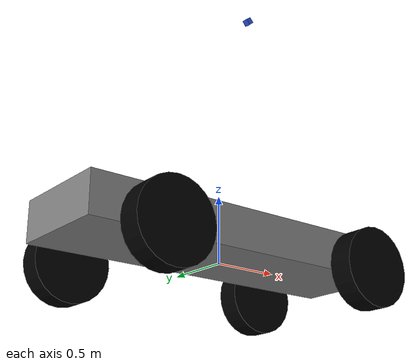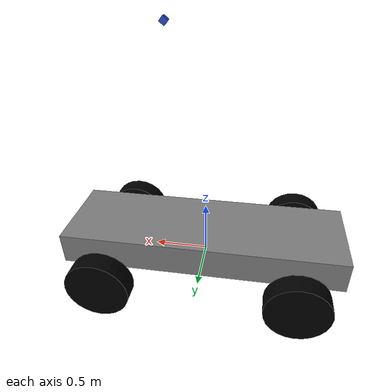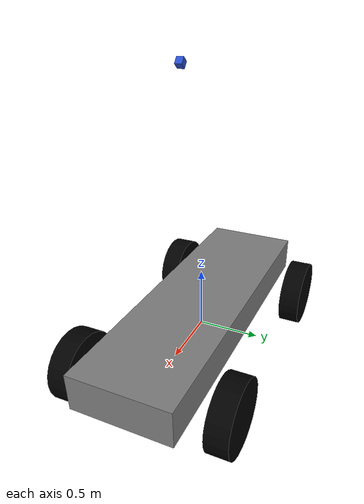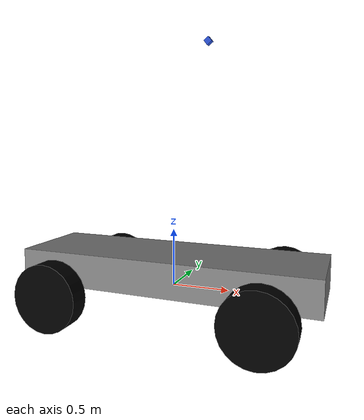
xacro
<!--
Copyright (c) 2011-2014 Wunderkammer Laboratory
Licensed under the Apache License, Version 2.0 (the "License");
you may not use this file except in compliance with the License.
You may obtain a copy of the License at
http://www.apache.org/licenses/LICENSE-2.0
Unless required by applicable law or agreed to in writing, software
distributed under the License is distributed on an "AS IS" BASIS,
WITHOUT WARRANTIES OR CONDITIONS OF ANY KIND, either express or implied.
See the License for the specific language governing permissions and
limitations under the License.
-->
<?xml version="1.0"?>

<robot name="em_3905" xmlns:xacro="http://www.ros.org/wiki/xacro">

	<xacro:macro name="cylinder_inertia" params="m r h">
		<inertia  ixx="${m*(3*r*r+h*h)/12}" ixy = "0" ixz = "0"
		          iyy="${m*(3*r*r+h*h)/12}" iyz = "0"
		          izz="${m*r*r/2}" />
	</xacro:macro>

	<xacro:macro name="box_inertia" params="m x y z">
		<inertia  ixx="${m*(y*y+z*z)/12}" ixy = "0" ixz = "0"
		          iyy="${m*(x*x+z*z)/12}" iyz = "0"
		          izz="${m*(x*x+z*z)/12}" />
	</xacro:macro>

	<xacro:macro name="sphere_inertia" params="m r">
		<inertia  ixx="${2*m*r*r/5}" ixy = "0" ixz = "0"
		          iyy="${2*m*r*r/5}" iyz = "0"
		          izz="${2*m*r*r/5}" />
	</xacro:macro>

  <!-- Degree-to-radian conversions -->
  <xacro:property name="degrees_45" value="0.785398163"/>
  <xacro:property name="degrees_90" value="1.57079633"/>

  <!-- chassis_length is measured along the x axis, chassis_width
       along the y axis, and chassis_height along the z axis. -->
  <xacro:property name="chassis_length" value="2.61"/>
  <xacro:property name="chassis_width" value="0.8"/>
  <xacro:property name="chassis_height" value="0.3"/>
  <xacro:property name="chassis_mass" value="2.788"/>

  <xacro:property name="hub_dia" value="0.381"/>
  <xacro:property name="tire_dia" value="0.5842"/>
  <xacro:property name="tire_width" value="0.1778"/>
  <xacro:property name="hex_hub_depth" value="0.0889"/>
  <xacro:property name="wheel_mass" value="0.9"/>

  <xacro:property name="wheelbase" value="1.7526"/>
  <xacro:property name="hex_hub_dist" value="1.2446"/>
  <xacro:property name="axle_length" value="0.0"/>
  <xacro:property name="wheel_travel" value="0.084"/>
  <xacro:property name="shock_z_offset" value="0.0655"/>

  <xacro:property name="shock_eff_limit" value="12.5106"/>
  <xacro:property name="shock_vel_limit" value="1000"/>

  <xacro:property name="axle_eff_limit" value="5.12766"/>
  <xacro:property name="axle_vel_limit" value="244.8696"/>

  <!-- These constants are used to simulate a Traxxas 2056 servo operated at
       6 V. servo_stall_torque is measured in N m. servo_no_load_speed is
       measured in rad/s. -->
  <xacro:property name="servo_stall_torque" value="150"/><!-- Effort 0.5649-->
  <xacro:property name="servo_no_load_speed" value="1"/><!--velocity 4.553-->

	<xacro:property name="cameraSize" value=".05"/>

  <material name="battery_mat">
    <color rgba="0 0 1 1"/>
  </material>
  <material name="chassis_mat">
    <color rgba="0.5 0.5 0.5 1"/>
  </material>
  <material name="tire_mat">
    <color rgba="0 0 0 1"/>
  </material>

  <!-- Null inertial element. This is needed to make the model work with
       Gazebo. -->
  <xacro:macro name="null_inertial">
    <inertial>
      <mass value="0.001"/>
      <inertia ixx="0.001" ixy="0" ixz="0" iyy="0.001" iyz="0" izz="0.001"/>
    </inertial>
  </xacro:macro>

  <!-- Inertia of a solid cuboid. Width is measured along the x axis, depth
       along the y axis, and height along the z axis. -->
  <xacro:macro name="solid_cuboid_inertial"
               params="width depth height mass *origin">
    <inertial>
      <xacro:insert_block name="origin"/>
      <mass value="${mass}"/>
      <inertia ixx="${mass * (depth * depth + height * height) / 12}"
               ixy="0" ixz="0"
               iyy="${mass * (width * width + height * height) / 12}"
               iyz="0"
               izz="${mass * (width * width + depth * depth) / 12}"/>
    </inertial>
  </xacro:macro>

  <xacro:macro name="thick_walled_tube_inertial"
               params="inner_rad outer_rad height mass">
    <inertial>
      <mass value="${mass}"/>
      <inertia ixx="${(1 / 12) * mass * (3 * (inner_rad * inner_rad +
                    outer_rad * outer_rad) + height * height)}"
               ixy="0" ixz="0"
               iyy="${(1 / 12) * mass * (3 * (inner_rad * inner_rad +
                    outer_rad * outer_rad) + height * height)}"
               iyz="0"
               izz="${mass * (inner_rad * inner_rad +
                    outer_rad * outer_rad) / 2}"/>
    </inertial>
  </xacro:macro>

  <!-- Shock absorber -->
  <xacro:macro name="shock"
               params="lr_prefix fr_prefix lr_reflect fr_reflect child">
    <joint name="${lr_prefix}_${fr_prefix}_shock" type="prismatic">
      <parent link="chassis"/>
      <child link="${child}"/>

      <origin xyz="${fr_reflect * wheelbase / 2}
                   ${lr_reflect * ((hex_hub_dist / 2) - axle_length)}
                   ${(wheel_travel / 2) - shock_z_offset}"/>
      <axis xyz="0 0 -1"/>
      <limit lower="${-wheel_travel / 2}" upper="${wheel_travel / 2}"
             effort="${shock_eff_limit}" velocity="${shock_vel_limit}"/>
    </joint>
    <transmission name="${lr_prefix}_${fr_prefix}_shock_trans">
      <type>transmission_interface/SimpleTransmission</type>
      <joint name="${lr_prefix}_${fr_prefix}_shock">
        <hardwareInterface>EffortJointInterface</hardwareInterface>
      </joint>
      <actuator name="${lr_prefix}_${fr_prefix}_shock_act">
        <!-- This hardwareInterface element exists for compatibility
             with ROS Hydro. -->
        <hardwareInterface>EffortJointInterface</hardwareInterface>
        <mechanicalReduction>1</mechanicalReduction>
      </actuator>
    </transmission>
  </xacro:macro>

  <!-- The "wheel" macro defines an axle carrier, axle, and wheel. -->
  <xacro:macro name="wheel" params="lr_prefix fr_prefix lr_reflect">
    <link name="${lr_prefix}_${fr_prefix}_axle_carrier">
      <xacro:null_inertial/>
    </link>

    <!-- The left and right axles have the same axis so that identical
         rotation values cause the wheels to rotate in the same direction. -->
    <joint name="${lr_prefix}_${fr_prefix}_axle" type="continuous">
      <parent link="${lr_prefix}_${fr_prefix}_axle_carrier"/>
      <child link="${lr_prefix}_${fr_prefix}_wheel"/>
      <origin rpy="${degrees_90} 0 0"/>
      <axis xyz="0 0 -1"/>
      <limit effort="${axle_eff_limit}" velocity="${axle_vel_limit}"/>
    </joint>
    <transmission name="${lr_prefix}_${fr_prefix}_axle_trans">
      <type>transmission_interface/SimpleTransmission</type>
      <joint name="${lr_prefix}_${fr_prefix}_axle">
        <hardwareInterface>EffortJointInterface</hardwareInterface>
      </joint>
      <actuator name="${lr_prefix}_${fr_prefix}_axle_act">
        <!-- This hardwareInterface element exists for compatibility
             with ROS Hydro. -->
        <hardwareInterface>EffortJointInterface</hardwareInterface>
        <mechanicalReduction>1</mechanicalReduction>
      </actuator>
    </transmission>

    <link name="${lr_prefix}_${fr_prefix}_wheel">
      <visual>
        <origin xyz="0
                     ${lr_reflect * (axle_length - (tire_width /
                     2 - hex_hub_depth))}
                     0"/>
        <geometry>
          <cylinder radius="${tire_dia / 2}" length="${tire_width}"/>
        </geometry>
        <material name="tire_mat"/>
      </visual>

      <collision>
        <origin xyz="0
                     ${lr_reflect * (axle_length - (tire_width /
                     2 - hex_hub_depth))}
                     0"/>
        <geometry>
          <cylinder radius="${tire_dia / 2}" length="${tire_width}"/>
        </geometry>
      </collision>

      <xacro:thick_walled_tube_inertial
          inner_rad="${hub_dia / 2}" outer_rad="${tire_dia / 2}"
          height="${tire_width}" mass="${wheel_mass}"/>
    </link>

    <gazebo reference="${lr_prefix}_${fr_prefix}_wheel">
      <material>Gazebo/Black</material>
    </gazebo>
  </xacro:macro>

  <!-- Front wheel -->
  <xacro:macro name="front_wheel"
               params="lr_prefix fr_prefix lr_reflect fr_reflect">
    <xacro:shock lr_prefix="${lr_prefix}" fr_prefix="${fr_prefix}"
                 lr_reflect="${lr_reflect}" fr_reflect="${fr_reflect}"
                 child="${lr_prefix}_steering_link"/>

    <link name="${lr_prefix}_steering_link">
      <xacro:null_inertial/>
    </link>

    <joint name="${lr_prefix}_steering_joint" type="revolute">
      <parent link="${lr_prefix}_steering_link"/>
      <child link="${lr_prefix}_${fr_prefix}_axle_carrier"/>
      <axis xyz="0 0 1"/>
      <limit lower="${-degrees_45}" upper="${degrees_45}"
             effort="${servo_stall_torque}" velocity="${servo_no_load_speed}"/>
    </joint>
    <transmission name="${lr_prefix}_steering_trans">
      <type>transmission_interface/SimpleTransmission</type>
      <joint name="${lr_prefix}_steering_joint">
        <hardwareInterface>EffortJointInterface</hardwareInterface>
      </joint>
      <actuator name="${lr_prefix}_steering_act">
        <!-- This hardwareInterface element exists for compatibility
             with ROS Hydro. -->
        <hardwareInterface>EffortJointInterface</hardwareInterface>
        <mechanicalReduction>1</mechanicalReduction>
      </actuator>
    </transmission>

    <xacro:wheel lr_prefix="${lr_prefix}" fr_prefix="${fr_prefix}"
                 lr_reflect="${lr_reflect}"/>
  </xacro:macro>

  <!-- Rear wheel -->
  <xacro:macro name="rear_wheel"
               params="lr_prefix fr_prefix lr_reflect fr_reflect">
    <xacro:shock lr_prefix="${lr_prefix}" fr_prefix="${fr_prefix}"
                 lr_reflect="${lr_reflect}" fr_reflect="${fr_reflect}"
                 child="${lr_prefix}_${fr_prefix}_axle_carrier"/>
    <xacro:wheel lr_prefix="${lr_prefix}" fr_prefix="${fr_prefix}"
                 lr_reflect="${lr_reflect}"/>
  </xacro:macro>

  <!-- base_link must have geometry so that its axes can be displayed in
       rviz. -->
  <link name="base_link">
    <visual>
      <geometry>
        <box size="0.01 0.01 0.01"/>
      </geometry>
      <material name="chassis_mat"/>
    </visual>
  </link>
  <gazebo reference="base_link">
    <material>Gazebo/Grey</material>
  </gazebo>

  <!-- Chassis -->
  <link name="chassis">
    <visual>
      <origin xyz="0 0 ${chassis_height / 2}"/>
      <geometry>
        <box size="${chassis_length} ${chassis_width} ${chassis_height}"/>
      </geometry>
      <material name="chassis_mat"/>
    </visual>

    <collision>
      <origin xyz="0 0 ${chassis_height / 2}"/>
      <geometry>
        <box size="${chassis_length} ${chassis_width} ${chassis_height}"/>
      </geometry>
    </collision>

    <xacro:solid_cuboid_inertial
        width="${chassis_length}" depth="${chassis_width}"
        height="${chassis_height}" mass="${chassis_mass}">
      <origin xyz="0 0 ${-chassis_height / 2}"/>
    </xacro:solid_cuboid_inertial>
  </link>
  <gazebo reference="chassis">
    <material>Gazebo/Grey</material>
  </gazebo>

  <joint name="base_link_to_chassis" type="fixed">
    <parent link="base_link"/>
    <child link="chassis"/>
  </joint>

  <!-- Wheels -->
  <xacro:front_wheel lr_prefix="left" fr_prefix="front"
                     lr_reflect="1" fr_reflect="1"/>
  <xacro:front_wheel lr_prefix="right" fr_prefix="front"
                     lr_reflect="-1" fr_reflect="1"/>
  <xacro:rear_wheel lr_prefix="left" fr_prefix="rear"
                    lr_reflect="1" fr_reflect="-1"/>
  <xacro:rear_wheel lr_prefix="right" fr_prefix="rear"
                    lr_reflect="-1" fr_reflect="-1"/>

  <gazebo>
    <plugin name="gazebo_ros_control" filename="libgazebo_ros_control.so"/>
			<legacyModeNS>true</legacyModeNS>
  </gazebo>

	<!-- Camera -->
	<!-- You can adjust the camera angle with the p in rpy, measured in radians. -->
	<!-- You can also increate the height of the camera by adding a number, in meters, -->
	<!-- to the z in xyz. For example, to simulate a camera mounted on a 1/2 meter post, -->
	<!-- we can replace the z value with ${wheelRadius+chassisHeight+0.5}   							-->
  <joint name="camera_joint" type="fixed">
    <origin xyz="${(chassis_length/2)-1} 0 ${(tire_dia/2)+chassis_height+1.5}" rpy="0 .9 0"/>
    <parent link="chassis"/>
    <child link="camera"/>
  </joint>

  <link name="camera">
    <collision>
      <origin xyz="0 0 0" rpy="0 0 0"/>
      <geometry>
	<box size="${cameraSize} ${cameraSize} ${cameraSize}"/>
      </geometry>
    </collision>

    <visual>
      <origin xyz="0 0 0" rpy="0 0 0"/>
      <geometry>
	<box size="${cameraSize} ${cameraSize} ${cameraSize}"/>
      </geometry>
      <material name="blue"/>
    </visual>

    <inertial>
      <mass value="0.05" />
      <origin xyz="0 0 0" rpy="0 0 0"/>
      <box_inertia m="0.05" x="${cameraSize}" y="${cameraSize}" z="${cameraSize}" />
    </inertial>
  </link>

 <gazebo reference="camera">
  <material>Gazebo/Blue</material>
  <sensor type="camera" name="camera1">
      <update_rate>30.0</update_rate>
      <camera name="head">
        <horizontal_fov>1.3962634</horizontal_fov>
        <image>
          <width>800</width>
          <height>800</height>
          <format>R8G8B8</format>
        </image>
        <clip>
          <near>0.02</near>
          <far>300</far>
        </clip>
      </camera>
      <plugin name="camera_controller" filename="libgazebo_ros_camera.so">
        <alwaysOn>true</alwaysOn>
        <updateRate>0.0</updateRate>
        <cameraName>camera1</cameraName>
        <imageTopicName>image_raw</imageTopicName>
        <cameraInfoTopicName>camera_info</cameraInfoTopicName>
        <frameName>camera_link</frameName>
        <hackBaseline>0.07</hackBaseline>
        <distortionK1>0.0</distortionK1>
        <distortionK2>0.0</distortionK2>
        <distortionK3>0.0</distortionK3>
        <distortionT1>0.0</distortionT1>
        <distortionT2>0.0</distortionT2>
      </plugin>
    </sensor>
 </gazebo>

</robot>
